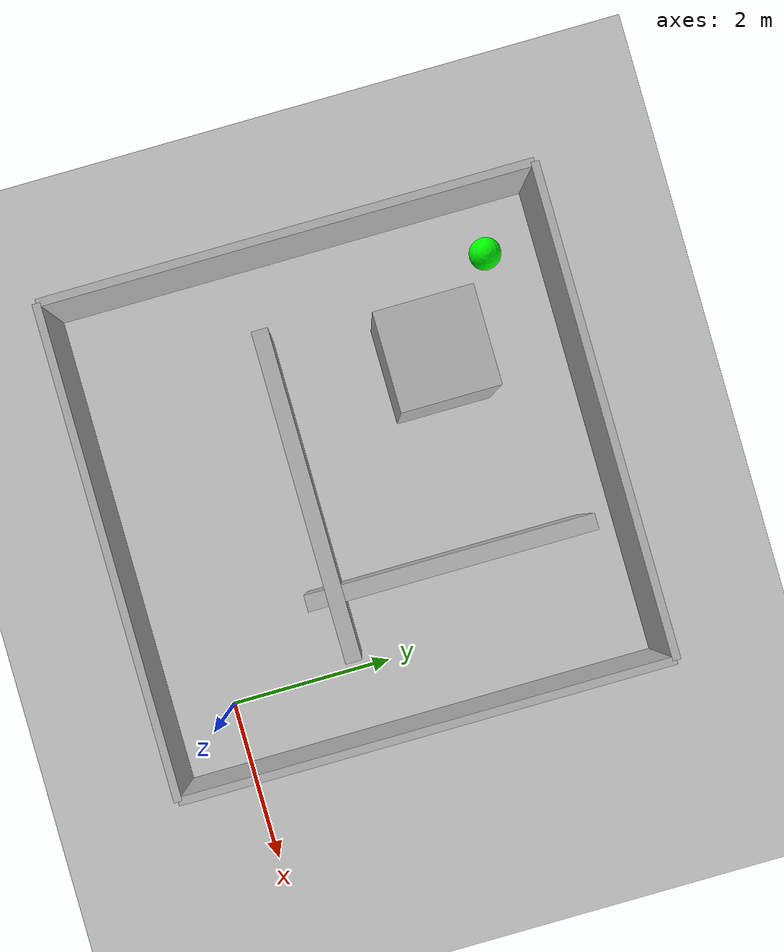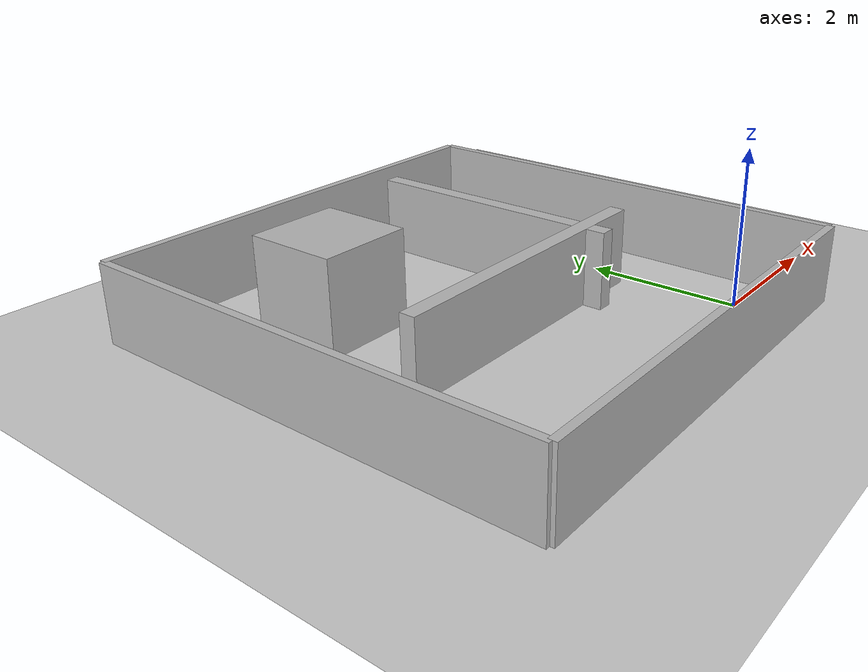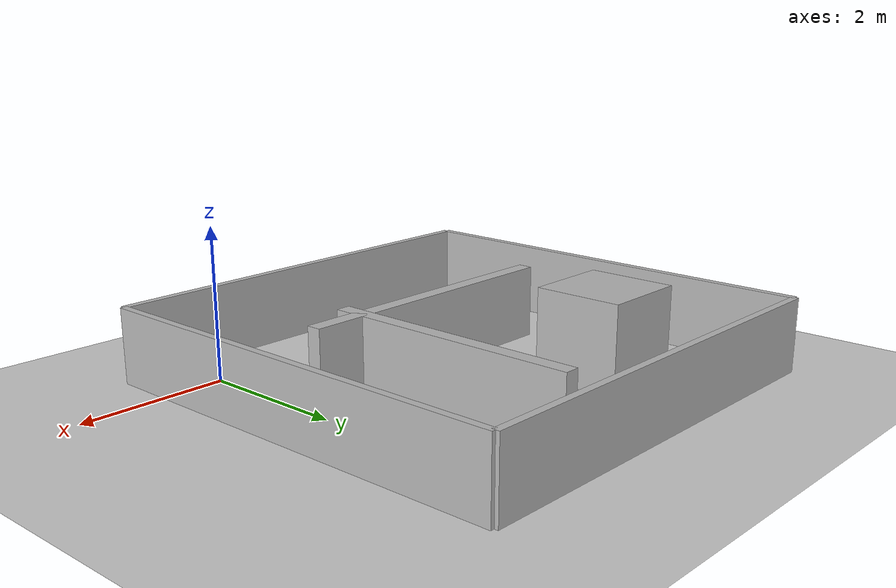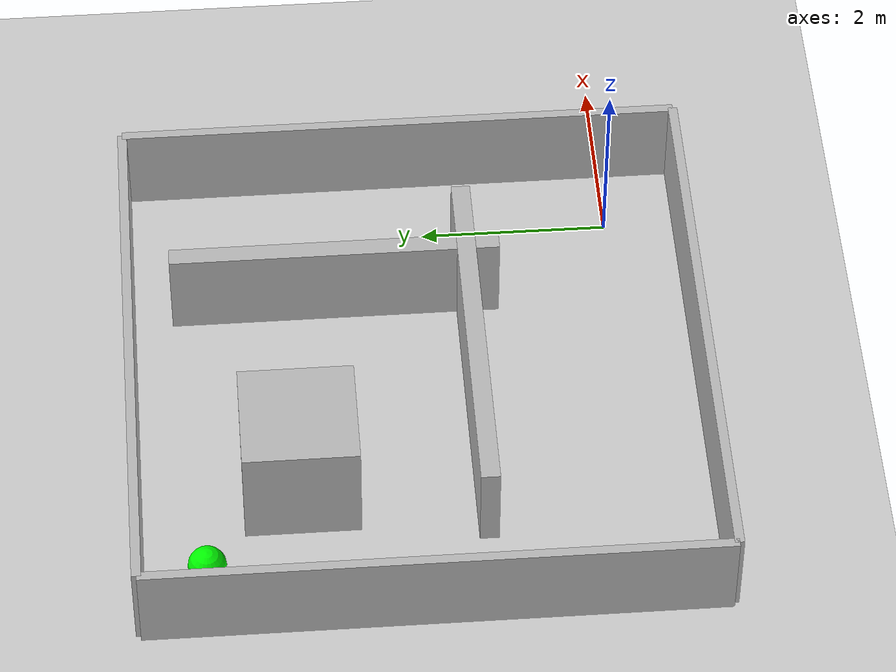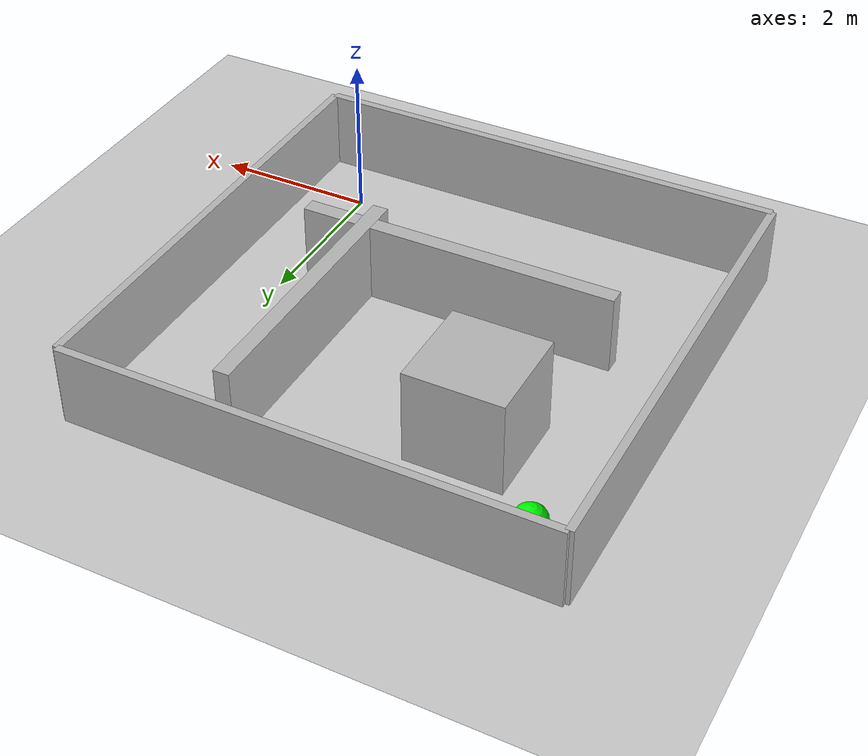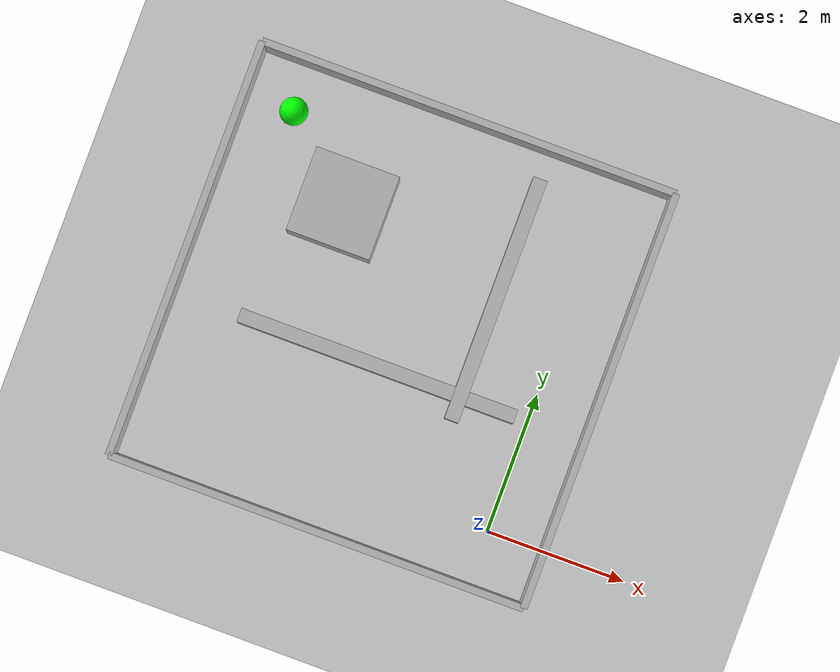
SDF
<?xml version="1.0"?>
<sdf version="1.6">
  <world name="martha_test_world_9">
    <physics name="default_physics" type="ode">
      <max_step_size>0.001</max_step_size>
      <real_time_update_rate>1000</real_time_update_rate>
      <real_time_factor>1.0</real_time_factor>
    </physics>
    <gravity>0 0 -9.81</gravity>
    <include><uri>model://sun</uri></include>
    <include><uri>model://ground_plane</uri></include>
    <plugin name="gazebo_ros_state" filename="libgazebo_ros_state.so">
      <ros><namespace>/gazebo</namespace></ros>
      <update_rate>50.0</update_rate>
    </plugin>

    <!-- Arena center: (-2.2, 2.2). Martha starts near the lower-right corner. -->
    <model name="wall_left"><static>true</static><pose>-2.2 5.2 0.5 0 0 0</pose><link name="link"><collision name="collision"><geometry><box><size>6 0.1 1</size></box></geometry></collision><visual name="visual"><geometry><box><size>6 0.1 1</size></box></geometry></visual></link></model>
    <model name="wall_right"><static>true</static><pose>-2.2 -0.8 0.5 0 0 0</pose><link name="link"><collision name="collision"><geometry><box><size>6 0.1 1</size></box></geometry></collision><visual name="visual"><geometry><box><size>6 0.1 1</size></box></geometry></visual></link></model>
    <model name="wall_front"><static>true</static><pose>0.8 2.2 0.5 0 0 0</pose><link name="link"><collision name="collision"><geometry><box><size>0.1 6 1</size></box></geometry></collision><visual name="visual"><geometry><box><size>0.1 6 1</size></box></geometry></visual></link></model>
    <model name="wall_back"><static>true</static><pose>-5.2 2.2 0.5 0 0 0</pose><link name="link"><collision name="collision"><geometry><box><size>0.1 6 1</size></box></geometry></collision><visual name="visual"><geometry><box><size>0.1 6 1</size></box></geometry></visual></link></model>

    <!-- Dividers leave 0.95 m doors at the arena boundaries. -->
    <model name="room_divider_1"><static>true</static><pose>-2.2 1.6 0.5 0 0 0</pose><link name="link"><collision name="collision"><geometry><box><size>4 0.2 1</size></box></geometry></collision><visual name="visual"><geometry><box><size>4 0.2 1</size></box></geometry></visual></link></model>
    <model name="room_divider_2"><static>true</static><pose>-1.0 3.0 0.5 0 0 1.570796</pose><link name="link"><collision name="collision"><geometry><box><size>3.5 0.2 1</size></box></geometry></collision><visual name="visual"><geometry><box><size>3.5 0.2 1</size></box></geometry></visual></link></model>
    <model name="room_obstacle"><static>true</static><pose>-3.4 3.5 0.6 0 0 0</pose><link name="link"><collision name="collision"><geometry><box><size>1.2 1.2 1.2</size></box></geometry></collision><visual name="visual"><geometry><box><size>1.2 1.2 1.2</size></box></geometry></visual></link></model>

    <model name="goal_point">
      <static>true</static><pose>-4.5 4.5 0.2 0 0 0</pose>
      <link name="link"><visual name="visual"><geometry><sphere><radius>0.2</radius></sphere></geometry><material><ambient>0 1 0 1</ambient><diffuse>0 1 0 1</diffuse></material></visual></link>
    </model>
  </world>
</sdf>
